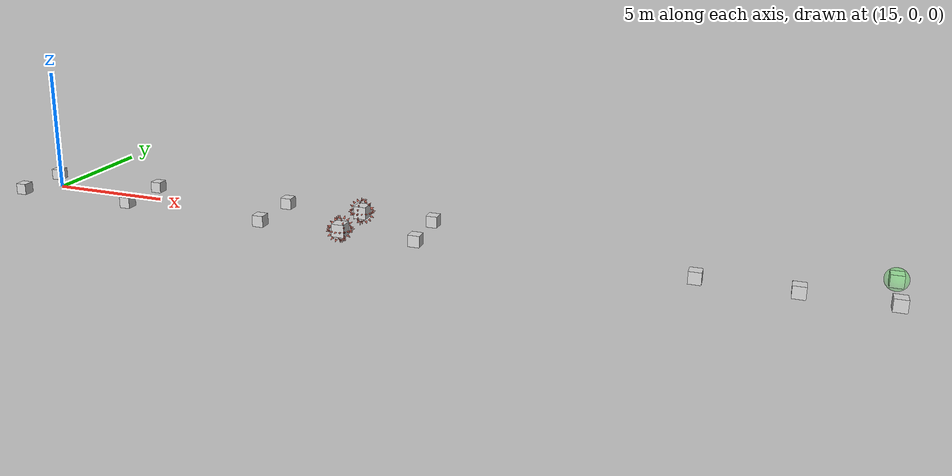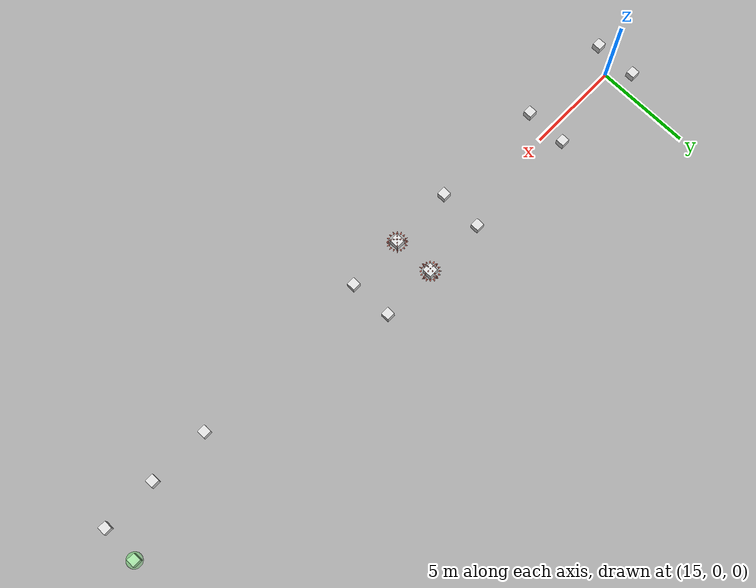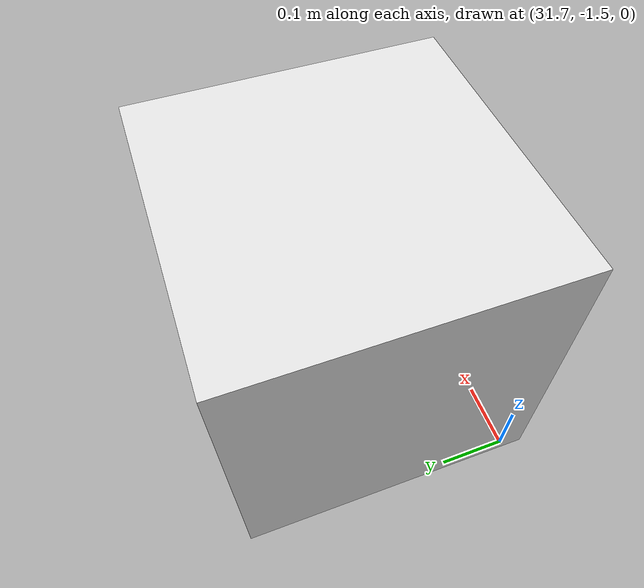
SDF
<sdf version="1.6">
 <world name="default">
  <light name="sun" type="directional">
   <pose>0 0 10 0 -0 0</pose>
   <diffuse>0.8 0.8 0.8 1</diffuse>
   <specular>0.2 0.2 0.2 1</specular>
   <attenuation>
    <range>1000</range>
    <constant>0.9</constant>
    <linear>0.01</linear>
    <quadratic>0.001</quadratic>
   </attenuation>
   <direction>-0.5 0.1 -0.9</direction>
  </light>
  <gravity>0 0 -9.8</gravity>
  <magnetic_field>6e-06 2.3e-05 -4.2e-05</magnetic_field>
  <atmosphere type="adiabatic"/>
  <physics name="default_physics" default="0" type="ode">
   <max_step_size>0.001</max_step_size>
   <real_time_factor>1</real_time_factor>
   <real_time_update_rate>1000</real_time_update_rate>
  </physics>
  <scene><ambient>0.4 0.4 0.4 1</ambient><background>0.9 0.9 0.9 1</background><shadows>1</shadows></scene>
  <spherical_coordinates>
   <surface_model>EARTH_WGS84</surface_model>
   <latitude_deg>0</latitude_deg>
   <longitude_deg>0</longitude_deg>
   <elevation>0</elevation>
   <heading_deg>0</heading_deg>
  </spherical_coordinates>
  <model name="vis_cue_repelling_8_2_p">
   <static>0</static>
   <pose>28.8391 0.874035 0.25 0 -0 0</pose>
   <link name="vis_cue_repelling_8_2_p">
    <inertial>
     <mass>1</mass>
     <inertia>
      <ixx>0.166667</ixx>
      <ixy>0</ixy>
      <ixz>0</ixz>
      <iyy>0.166667</iyy>
      <iyz>0</iyz>
      <izz>0.166667</izz>
     </inertia>
    </inertial>
    <collision name="collision"><geometry><box><size>0.5 0.5 0.5</size></box></geometry></collision>
    <visual name="box_visual">
     <geometry><box><size>0.5 0.5 0.5</size></box></geometry>
     <material>
      <ambient>0.85 0.85 0.85 1</ambient>
      <diffuse>0.85 0.85 0.85 1</diffuse>
      <specular>0.15 0.15 0.15 1</specular>
      <emissive>0 0 0 0</emissive>
     </material>
    </visual>
    <visual name="cue_visual_1">
     <pose>0 0 0 1.5708 -0 1.5708</pose>
     <geometry>
      <mesh>
       <uri>model://vis_cue_repel_8_2/meshes/repelling_cue_8_spike_2.stl</uri>
       <scale>0.42 0.42 0.42</scale>
      </mesh>
     </geometry>
     <material>
      <ambient>1 0.3 0.2 0.6</ambient>
      <diffuse>1 0.3 0.2 0.6</diffuse>
      <specular>1 0.3 0.2 0.7</specular>
      <emissive>0.5 0 0 0.1</emissive>
     </material>
    </visual>
    <visual name="cue_visual_2">
     <pose>0 0 0 1.5708 -0 0</pose>
     <geometry>
      <mesh>
       <uri>model://vis_cue_repel_8_2/meshes/repelling_cue_8_spike_2.stl</uri>
       <scale>0.42 0.42 0.42</scale>
      </mesh>
     </geometry>
     <material>
      <ambient>1 0.3 0.2 0.6</ambient>
      <diffuse>1 0.3 0.2 0.6</diffuse>
      <specular>1 0.3 0.2 0.7</specular>
      <emissive>0.5 0 0 0.1</emissive>
     </material>
    </visual>
    <visual name="cue_visual_3">
     <geometry>
      <mesh>
       <uri>model://vis_cue_repel_8_2/meshes/repelling_cue_8_spike_2.stl</uri>
       <scale>0.42 0.42 0.42</scale>
      </mesh>
     </geometry>
     <material>
      <ambient>1 0.3 0.2 0.6</ambient>
      <diffuse>1 0.3 0.2 0.6</diffuse>
      <specular>1 0.3 0.2 0.7</specular>
      <emissive>0.5 0 0 0.1</emissive>
     </material>
    </visual>
   </link>
  </model>
  <model name="vis_cue_normal">
   <static>0</static>
   <pose>14.0943 0.962651 0.224993 -6e-06 7e-06 0</pose>
   <link name="vis_cue_normal">
    <inertial>
     <mass>1</mass>
     <inertia>
      <ixx>0.166667</ixx>
      <ixy>0</ixy>
      <ixz>0</ixz>
      <iyy>0.166667</iyy>
      <iyz>0</iyz>
      <izz>0.166667</izz>
     </inertia>
    </inertial>
    <collision name="collision"><geometry><box><size>0.45 0.45 0.45</size></box></geometry></collision>
    <visual name="box_visual">
     <geometry><box><size>0.45 0.45 0.45</size></box></geometry>
     <material>
      <ambient>0.85 0.85 0.85 1</ambient>
      <diffuse>0.85 0.85 0.85 1</diffuse>
      <specular>0.15 0.15 0.15 1</specular>
      <emissive>0 0 0 0</emissive>
     </material>
    </visual>
   </link>
  </model>
  <model name="vis_cue_normal_clone">
   <static>0</static>
   <pose>19.3308 0.902785 0.225 0 -0 0</pose>
   <link name="vis_cue_normal">
    <inertial>
     <mass>1</mass>
     <inertia>
      <ixx>0.166667</ixx>
      <ixy>0</ixy>
      <ixz>0</ixz>
      <iyy>0.166667</iyy>
      <iyz>0</iyz>
      <izz>0.166667</izz>
     </inertia>
    </inertial>
    <collision name="collision"><geometry><box><size>0.45 0.45 0.45</size></box></geometry></collision>
    <visual name="box_visual">
     <geometry><box><size>0.45 0.45 0.45</size></box></geometry>
     <material>
      <ambient>0.85 0.85 0.85 1</ambient>
      <diffuse>0.85 0.85 0.85 1</diffuse>
      <specular>0.15 0.15 0.15 1</specular>
      <emissive>0 0 0 0</emissive>
     </material>
    </visual>
   </link>
  </model>
  <model name="vis_cue_normal_clone_0">
   <static>0</static>
   <pose>25.5459 0.908842 0.225 0 -0 0</pose>
   <link name="vis_cue_normal">
    <inertial>
     <mass>1</mass>
     <inertia>
      <ixx>0.166667</ixx>
      <ixy>0</ixy>
      <ixz>0</ixz>
      <iyy>0.166667</iyy>
      <iyz>0</iyz>
      <izz>0.166667</izz>
     </inertia>
    </inertial>
    <collision name="collision"><geometry><box><size>0.45 0.45 0.45</size></box></geometry></collision>
    <visual name="box_visual">
     <geometry><box><size>0.45 0.45 0.45</size></box></geometry>
     <material>
      <ambient>0.85 0.85 0.85 1</ambient>
      <diffuse>0.85 0.85 0.85 1</diffuse>
      <specular>0.15 0.15 0.15 1</specular>
      <emissive>0 0 0 0</emissive>
     </material>
    </visual>
   </link>
  </model>
  <model name="vis_cue_normal_clone_1">
   <static>0</static>
   <pose>31.8233 0.922108 0.225 0 -0 0</pose>
   <link name="vis_cue_normal">
    <inertial>
     <mass>1</mass>
     <inertia>
      <ixx>0.166667</ixx>
      <ixy>0</ixy>
      <ixz>0</ixz>
      <iyy>0.166667</iyy>
      <iyz>0</iyz>
      <izz>0.166667</izz>
     </inertia>
    </inertial>
    <collision name="collision"><geometry><box><size>0.45 0.45 0.45</size></box></geometry></collision>
    <visual name="box_visual">
     <geometry><box><size>0.45 0.45 0.45</size></box></geometry>
     <material>
      <ambient>0.85 0.85 0.85 1</ambient>
      <diffuse>0.85 0.85 0.85 1</diffuse>
      <specular>0.15 0.15 0.15 1</specular>
      <emissive>0 0 0 0</emissive>
     </material>
    </visual>
   </link>
  </model>
  <model name="vis_cue_normal_clone_2">
   <static>0</static>
   <pose>14.1123 -1.31312 0.225 0 -0 0</pose>
   <link name="vis_cue_normal">
    <inertial>
     <mass>1</mass>
     <inertia>
      <ixx>0.166667</ixx>
      <ixy>0</ixy>
      <ixz>0</ixz>
      <iyy>0.166667</iyy>
      <iyz>0</iyz>
      <izz>0.166667</izz>
     </inertia>
    </inertial>
    <collision name="collision"><geometry><box><size>0.45 0.45 0.45</size></box></geometry></collision>
    <visual name="box_visual">
     <geometry><box><size>0.45 0.45 0.45</size></box></geometry>
     <material>
      <ambient>0.85 0.85 0.85 1</ambient>
      <diffuse>0.85 0.85 0.85 1</diffuse>
      <specular>0.15 0.15 0.15 1</specular>
      <emissive>0 0 0 0</emissive>
     </material>
    </visual>
   </link>
  </model>
  <model name="vis_cue_normal_clone_3">
   <static>0</static>
   <pose>19.3319 -1.30532 0.225 0 -0 0</pose>
   <link name="vis_cue_normal">
    <inertial>
     <mass>1</mass>
     <inertia>
      <ixx>0.166667</ixx>
      <ixy>0</ixy>
      <ixz>0</ixz>
      <iyy>0.166667</iyy>
      <iyz>0</iyz>
      <izz>0.166667</izz>
     </inertia>
    </inertial>
    <collision name="collision"><geometry><box><size>0.45 0.45 0.45</size></box></geometry></collision>
    <visual name="box_visual">
     <geometry><box><size>0.45 0.45 0.45</size></box></geometry>
     <material>
      <ambient>0.85 0.85 0.85 1</ambient>
      <diffuse>0.85 0.85 0.85 1</diffuse>
      <specular>0.15 0.15 0.15 1</specular>
      <emissive>0 0 0 0</emissive>
     </material>
    </visual>
   </link>
  </model>
  <model name="vis_cue_normal_clone_4">
   <static>0</static>
   <pose>25.5134 -1.38854 0.225 0 -0 0</pose>
   <link name="vis_cue_normal">
    <inertial>
     <mass>1</mass>
     <inertia>
      <ixx>0.166667</ixx>
      <ixy>0</ixy>
      <ixz>0</ixz>
      <iyy>0.166667</iyy>
      <iyz>0</iyz>
      <izz>0.166667</izz>
     </inertia>
    </inertial>
    <collision name="collision"><geometry><box><size>0.45 0.45 0.45</size></box></geometry></collision>
    <visual name="box_visual">
     <geometry><box><size>0.45 0.45 0.45</size></box></geometry>
     <material>
      <ambient>0.85 0.85 0.85 1</ambient>
      <diffuse>0.85 0.85 0.85 1</diffuse>
      <specular>0.15 0.15 0.15 1</specular>
      <emissive>0 0 0 0</emissive>
     </material>
    </visual>
   </link>
  </model>
  <model name="vis_cue_normal_clone_5">
   <static>0</static>
   <pose>31.9179 -1.30674 0.225 0 -0 0</pose>
   <link name="vis_cue_normal">
    <inertial>
     <mass>1</mass>
     <inertia>
      <ixx>0.166667</ixx>
      <ixy>0</ixy>
      <ixz>0</ixz>
      <iyy>0.166667</iyy>
      <iyz>0</iyz>
      <izz>0.166667</izz>
     </inertia>
    </inertial>
    <collision name="collision"><geometry><box><size>0.45 0.45 0.45</size></box></geometry></collision>
    <visual name="box_visual">
     <geometry><box><size>0.45 0.45 0.45</size></box></geometry>
     <material>
      <ambient>0.85 0.85 0.85 1</ambient>
      <diffuse>0.85 0.85 0.85 1</diffuse>
      <specular>0.15 0.15 0.15 1</specular>
      <emissive>0 0 0 0</emissive>
     </material>
    </visual>
   </link>
  </model>
  <model name="vis_cue_repelling_8_2">
   <static>0</static>
   <pose>28.8886 -1.32068 0.25 0 -0 0</pose>
   <link name="vis_cue_repelling_8_2">
    <inertial>
     <mass>1</mass>
     <inertia>
      <ixx>0.166667</ixx>
      <ixy>0</ixy>
      <ixz>0</ixz>
      <iyy>0.166667</iyy>
      <iyz>0</iyz>
      <izz>0.166667</izz>
     </inertia>
    </inertial>
    <collision name="collision"><geometry><box><size>0.5 0.5 0.5</size></box></geometry></collision>
    <visual name="box_visual">
     <geometry><box><size>0.5 0.5 0.5</size></box></geometry>
     <material>
      <ambient>0.85 0.85 0.85 1</ambient>
      <diffuse>0.85 0.85 0.85 1</diffuse>
      <specular>0.15 0.15 0.15 1</specular>
      <emissive>0 0 0 0</emissive>
     </material>
    </visual>
    <visual name="cue_visual_1">
     <pose>0 0 0 1.5708 -0 -0.7854</pose>
     <geometry>
      <mesh>
       <uri>model://vis_cue_repel_8_2/meshes/repelling_cue_8_spike_2.stl</uri>
       <scale>0.42 0.42 0.42</scale>
      </mesh>
     </geometry>
     <material>
      <ambient>1 0.3 0.2 0.6</ambient>
      <diffuse>1 0.3 0.2 0.6</diffuse>
      <specular>1 0.3 0.2 0.7</specular>
      <emissive>0.5 0 0 0.1</emissive>
     </material>
    </visual>
    <visual name="cue_visual_2">
     <pose>0 0 0 1.5708 -0 0.7854</pose>
     <geometry>
      <mesh>
       <uri>model://vis_cue_repel_8_2/meshes/repelling_cue_8_spike_2.stl</uri>
       <scale>0.42 0.42 0.42</scale>
      </mesh>
     </geometry>
     <material>
      <ambient>1 0.3 0.2 0.6</ambient>
      <diffuse>1 0.3 0.2 0.6</diffuse>
      <specular>1 0.3 0.2 0.7</specular>
      <emissive>0.5 0 0 0.1</emissive>
     </material>
    </visual>
    <visual name="cue_visual_3">
     <geometry>
      <mesh>
       <uri>model://vis_cue_repel_8_2/meshes/repelling_cue_8_spike_2.stl</uri>
       <scale>0.42 0.42 0.42</scale>
      </mesh>
     </geometry>
     <material>
      <ambient>1 0.3 0.2 0.6</ambient>
      <diffuse>1 0.3 0.2 0.6</diffuse>
      <specular>1 0.3 0.2 0.7</specular>
      <emissive>0.5 0 0 0.1</emissive>
     </material>
    </visual>
   </link>
  </model>
  <model name="vis_cue_normal_clone_4_clone">
   <static>0</static>
   <pose>41.872 -1.25002 0.225 0 -0 0</pose>
   <link name="vis_cue_normal">
    <inertial>
     <mass>1</mass>
     <inertia>
      <ixx>0.166667</ixx>
      <ixy>0</ixy>
      <ixz>0</ixz>
      <iyy>0.166667</iyy>
      <iyz>0</iyz>
      <izz>0.166667</izz>
     </inertia>
    </inertial>
    <collision name="collision"><geometry><box><size>0.45 0.45 0.45</size></box></geometry></collision>
    <visual name="box_visual">
     <geometry><box><size>0.45 0.45 0.45</size></box></geometry>
     <material>
      <ambient>0.85 0.85 0.85 1</ambient>
      <diffuse>0.85 0.85 0.85 1</diffuse>
      <specular>0.15 0.15 0.15 1</specular>
      <emissive>0 0 0 0</emissive>
     </material>
    </visual>
   </link>
  </model>
  <model name="vis_cue_attract">
   <static>0</static>
   <pose>48.1415 0.761271 0.25 0 -0 0</pose>
   <link name="vis_cue_attract">
    <inertial>
     <mass>1</mass>
     <inertia>
      <ixx>0.166667</ixx>
      <ixy>0</ixy>
      <ixz>0</ixz>
      <iyy>0.166667</iyy>
      <iyz>0</iyz>
      <izz>0.166667</izz>
     </inertia>
    </inertial>
    <collision name="collision"><geometry><box><size>0.45 0.45 0.45</size></box></geometry></collision>
    <visual name="box_visual">
     <geometry><box><size>0.45 0.45 0.45</size></box></geometry>
     <material>
      <ambient>0.85 0.85 0.85 1</ambient>
      <diffuse>0.85 0.85 0.85 1</diffuse>
      <specular>0.15 0.15 0.15 1</specular>
      <emissive>0 0 0 0</emissive>
     </material>
    </visual>
    <visual name="cue_visual">
     <geometry>
      <mesh><uri>model://vis_cue_attract/meshes/sphere.stl</uri><scale>0.8 0.8 0.8</scale></mesh>
     </geometry>
     <material>
      <ambient>0 1 0 0.15</ambient>
      <diffuse>0 1 0 0.25</diffuse>
      <specular>0 1 0 0.25</specular>
      <emissive>0 1 0 0.2</emissive>
     </material>
    </visual>
   </link>
  </model>
  <model name="vis_cue_normal_clone_4_clone_0">
   <static>0</static>
   <pose>45.1304 -1.2931 0.225 0 -0 0</pose>
   <link name="vis_cue_normal">
    <inertial>
     <mass>1</mass>
     <inertia>
      <ixx>0.166667</ixx>
      <ixy>0</ixy>
      <ixz>0</ixz>
      <iyy>0.166667</iyy>
      <iyz>0</iyz>
      <izz>0.166667</izz>
     </inertia>
    </inertial>
    <collision name="collision"><geometry><box><size>0.45 0.45 0.45</size></box></geometry></collision>
    <visual name="box_visual">
     <geometry><box><size>0.45 0.45 0.45</size></box></geometry>
     <material>
      <ambient>0.85 0.85 0.85 1</ambient>
      <diffuse>0.85 0.85 0.85 1</diffuse>
      <specular>0.15 0.15 0.15 1</specular>
      <emissive>0 0 0 0</emissive>
     </material>
    </visual>
   </link>
  </model>
  <model name="vis_cue_normal_clone_4_clone_1">
   <static>0</static>
   <pose>48.1011 -1.26526 0.225 0 -0 0</pose>
   <link name="vis_cue_normal">
    <inertial>
     <mass>1</mass>
     <inertia>
      <ixx>0.166667</ixx>
      <ixy>0</ixy>
      <ixz>0</ixz>
      <iyy>0.166667</iyy>
      <iyz>0</iyz>
      <izz>0.166667</izz>
     </inertia>
    </inertial>
    <collision name="collision"><geometry><box><size>0.45 0.45 0.45</size></box></geometry></collision>
    <visual name="box_visual">
     <geometry><box><size>0.45 0.45 0.45</size></box></geometry>
     <material>
      <ambient>0.85 0.85 0.85 1</ambient>
      <diffuse>0.85 0.85 0.85 1</diffuse>
      <specular>0.15 0.15 0.15 1</specular>
      <emissive>0 0 0 0</emissive>
     </material>
    </visual>
   </link>
  </model>
 </world>
</sdf>
